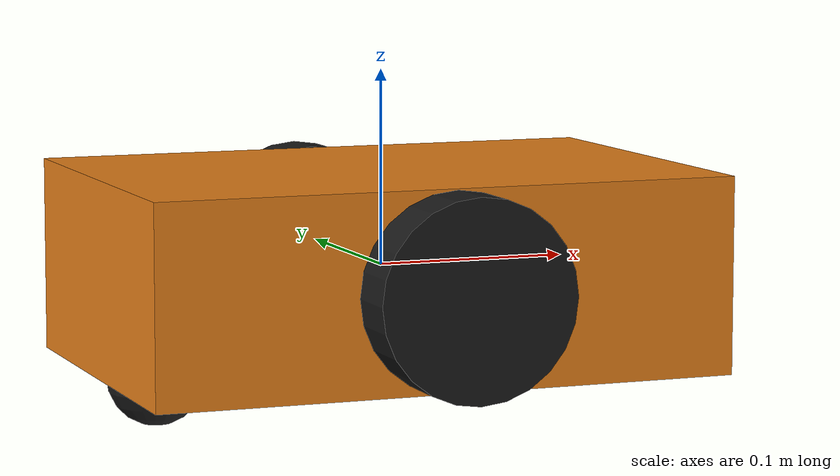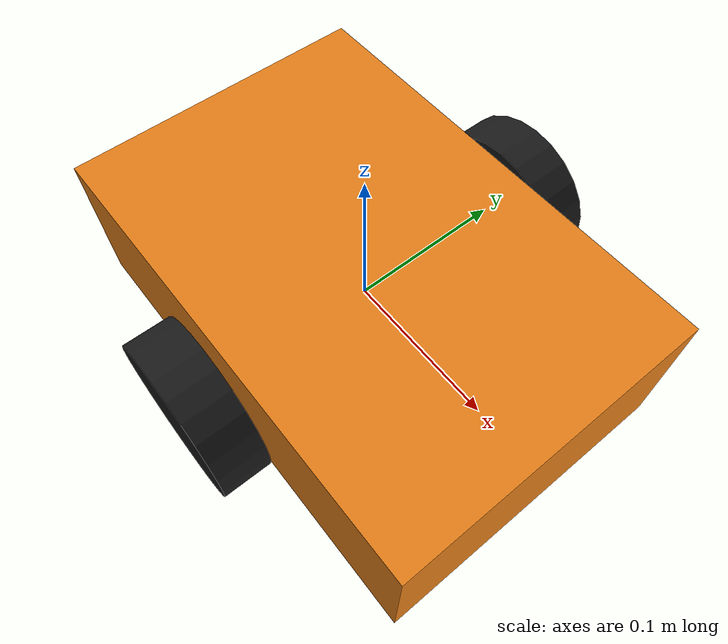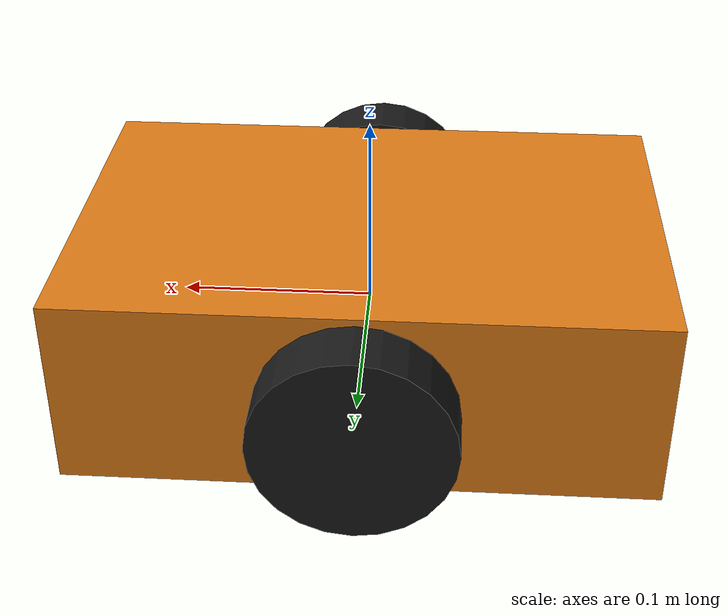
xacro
<?xml version="1.0"?>
<robot name="simple_diffdrive" xmlns:xacro="http://www.ros.org/wiki/xacro">

  <xacro:property name="chassis_length" value="0.3"/>
  <xacro:property name="chassis_width" value="0.2"/>
  <xacro:property name="chassis_height" value="0.1"/>
  <xacro:property name="wheel_radius" value="0.05"/>
  <xacro:property name="wheel_width" value="0.03"/>
  <xacro:property name="wheel_separation" value="0.24"/>

  <link name="base_link">
    <visual>
      <geometry><box size="${chassis_length} ${chassis_width} ${chassis_height}"/></geometry>
      <material name="orange"><color rgba="0.9 0.5 0.1 1"/></material>
    </visual>
    <collision>
      <geometry><box size="${chassis_length} ${chassis_width} ${chassis_height}"/></geometry>
    </collision>
    <inertial>
      <mass value="2.0"/>
      <inertia ixx="0.02" ixy="0" ixz="0" iyy="0.03" iyz="0" izz="0.04"/>
    </inertial>
  </link>

  <link name="left_wheel">
    <visual>
      <origin xyz="0 0 0" rpy="1.5708 0 0"/>
      <geometry><cylinder radius="${wheel_radius}" length="${wheel_width}"/></geometry>
      <material name="black"><color rgba="0.1 0.1 0.1 1"/></material>
    </visual>
    <collision>
      <origin xyz="0 0 0" rpy="1.5708 0 0"/>
      <geometry><cylinder radius="${wheel_radius}" length="${wheel_width}"/></geometry>
    </collision>
    <inertial>
      <mass value="0.2"/>
      <inertia ixx="0.0005" ixy="0" ixz="0" iyy="0.0005" iyz="0" izz="0.0005"/>
    </inertial>
  </link>

  <joint name="left_wheel_joint" type="continuous">
    <parent link="base_link"/>
    <child link="left_wheel"/>
    <origin xyz="0 ${wheel_separation/2} -${wheel_radius - chassis_height/2}" rpy="0 0 0"/>
    <axis xyz="0 1 0"/>
  </joint>

  <link name="right_wheel">
    <visual>
      <origin xyz="0 0 0" rpy="1.5708 0 0"/>
      <geometry><cylinder radius="${wheel_radius}" length="${wheel_width}"/></geometry>
      <material name="black"><color rgba="0.1 0.1 0.1 1"/></material>
    </visual>
    <collision>
      <origin xyz="0 0 0" rpy="1.5708 0 0"/>
      <geometry><cylinder radius="${wheel_radius}" length="${wheel_width}"/></geometry>
    </collision>
    <inertial>
      <mass value="0.2"/>
      <inertia ixx="0.0005" ixy="0" ixz="0" iyy="0.0005" iyz="0" izz="0.0005"/>
    </inertial>
  </link>

  <joint name="right_wheel_joint" type="continuous">
    <parent link="base_link"/>
    <child link="right_wheel"/>
    <origin xyz="0 -${wheel_separation/2} -${wheel_radius - chassis_height/2}" rpy="0 0 0"/>
    <axis xyz="0 1 0"/>
  </joint>

  <link name="caster_wheel">
    <visual>
      <geometry><sphere radius="0.025"/></geometry>
      <material name="black"><color rgba="0.1 0.1 0.1 1"/></material>
    </visual>
    <collision>
      <geometry><sphere radius="0.025"/></geometry>
    </collision>
    <inertial>
      <mass value="0.05"/>
      <inertia ixx="0.0001" ixy="0" ixz="0" iyy="0.0001" iyz="0" izz="0.0001"/>
    </inertial>
  </link>

  <joint name="caster_joint" type="fixed">
    <parent link="base_link"/>
    <child link="caster_wheel"/>
    <origin xyz="-0.12 0 -${chassis_height/2}" rpy="0 0 0"/>
  </joint>

  <gazebo>
    <plugin filename="gz-sim-diff-drive-system" name="gz::sim::systems::DiffDrive">
      <left_joint>left_wheel_joint</left_joint>
      <right_joint>right_wheel_joint</right_joint>
      <wheel_separation>${wheel_separation}</wheel_separation>
      <wheel_radius>${wheel_radius}</wheel_radius>
      <!-- Topic names the plugin publishes/subscribes on INSIDE Gazebo's
           own transport — these are what ros_gz_bridge.yaml (in
           gazebo_sim.launch.py) bridges to ROS2's /cmd_vel and /odom. -->
      <topic>cmd_vel</topic>
      <odom_topic>odom</odom_topic>
      <frame_id>odom</frame_id>
      <child_frame_id>base_link</child_frame_id>
    </plugin>
    <plugin filename="gz-sim-joint-state-publisher-system" name="gz::sim::systems::JointStatePublisher"/>
  </gazebo>

</robot>
